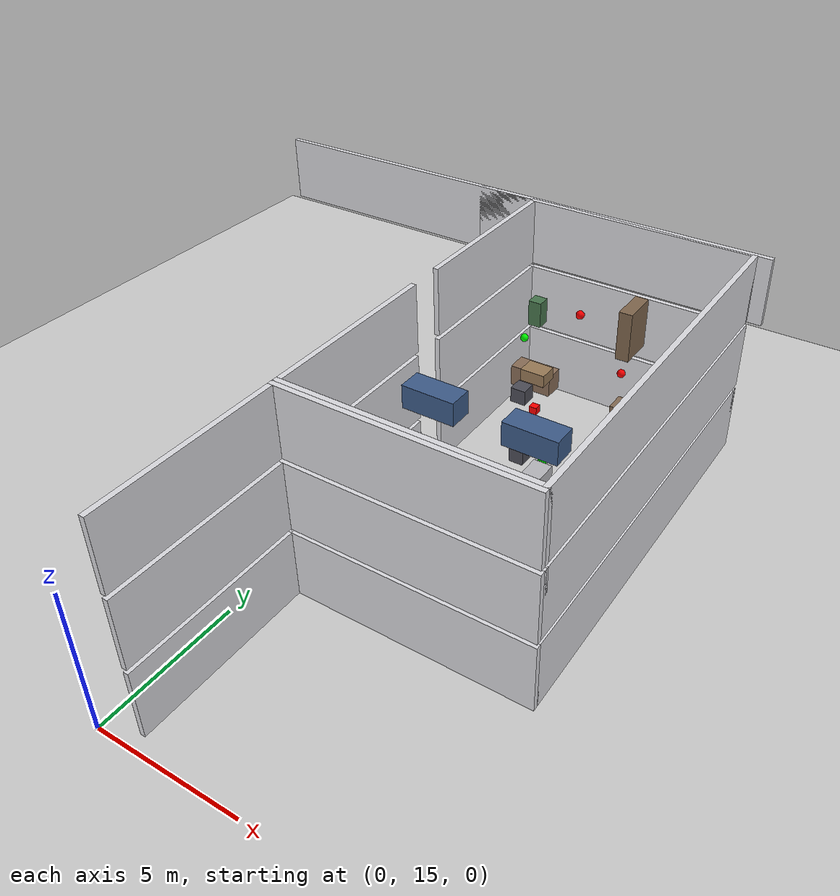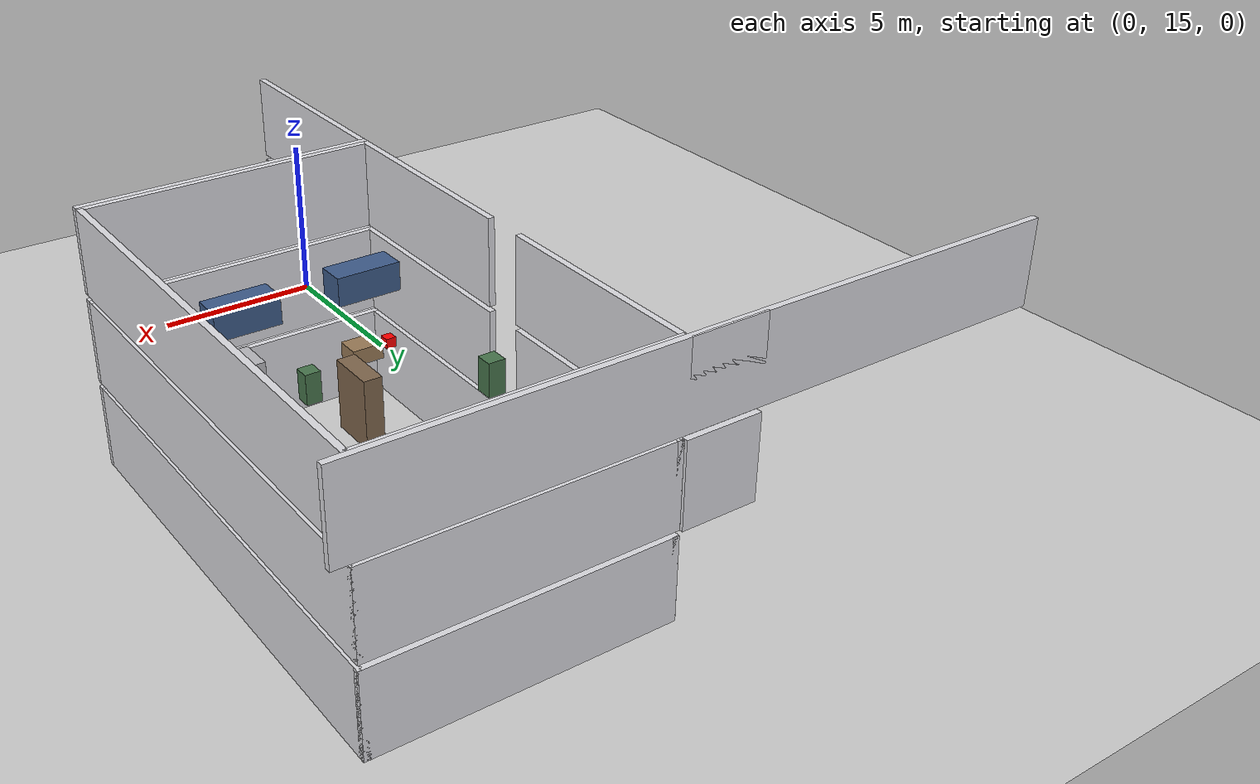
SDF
<sdf version="1.7">
 <world name="generated_world">
  <include><uri>model://sun</uri></include>
  <include><uri>model://ground_plane</uri></include>
  <model name="generated_building">
   <static>true</static>
   <link name="floor_0_room_1_corridor_wall_upper">
    <pose>1.1900 18.6725 1.2250 0.0000 0.0000 0.0000</pose>
    <collision name="floor_0_room_1_corridor_wall_upper_collision">
     <geometry><box><size>0.1800 6.4150 2.4500</size></box></geometry>
    </collision>
    <visual name="floor_0_room_1_corridor_wall_upper_visual">
     <geometry><box><size>0.1800 6.4150 2.4500</size></box></geometry>
     <material><ambient>0.86 0.86 0.88 1</ambient><diffuse>0.86 0.86 0.88 1</diffuse></material>
    </visual>
    <gravity>false</gravity>
   </link>
   <link name="floor_0_room_1_north_wall">
    <pose>5.3000 21.7900 1.2250 0.0000 0.0000 0.0000</pose>
    <collision name="floor_0_room_1_north_wall_collision">
     <geometry><box><size>8.4000 0.1800 2.4500</size></box></geometry>
    </collision>
    <visual name="floor_0_room_1_north_wall_visual">
     <geometry><box><size>8.4000 0.1800 2.4500</size></box></geometry>
     <material><ambient>0.86 0.86 0.88 1</ambient><diffuse>0.86 0.86 0.88 1</diffuse></material>
    </visual>
    <gravity>false</gravity>
   </link>
   <link name="floor_0_room_3_corridor_wall_lower">
    <pose>1.1900 25.0875 1.2250 0.0000 0.0000 0.0000</pose>
    <collision name="floor_0_room_3_corridor_wall_lower_collision">
     <geometry><box><size>0.1800 6.4150 2.4500</size></box></geometry>
    </collision>
    <visual name="floor_0_room_3_corridor_wall_lower_visual">
     <geometry><box><size>0.1800 6.4150 2.4500</size></box></geometry>
     <material><ambient>0.86 0.86 0.88 1</ambient><diffuse>0.86 0.86 0.88 1</diffuse></material>
    </visual>
    <gravity>false</gravity>
   </link>
   <link name="floor_0_room_3_corridor_wall_upper">
    <pose>1.1900 32.7025 1.2250 0.0000 0.0000 0.0000</pose>
    <collision name="floor_0_room_3_corridor_wall_upper_collision">
     <geometry><box><size>0.1800 6.4150 2.4500</size></box></geometry>
    </collision>
    <visual name="floor_0_room_3_corridor_wall_upper_visual">
     <geometry><box><size>0.1800 6.4150 2.4500</size></box></geometry>
     <material><ambient>0.86 0.86 0.88 1</ambient><diffuse>0.86 0.86 0.88 1</diffuse></material>
    </visual>
    <gravity>false</gravity>
   </link>
   <link name="floor_0_room_3_east_wall">
    <pose>9.4100 28.8950 1.2250 0.0000 0.0000 0.0000</pose>
    <collision name="floor_0_room_3_east_wall_collision">
     <geometry><box><size>0.1800 14.0300 2.4500</size></box></geometry>
    </collision>
    <visual name="floor_0_room_3_east_wall_visual">
     <geometry><box><size>0.1800 14.0300 2.4500</size></box></geometry>
     <material><ambient>0.86 0.86 0.88 1</ambient><diffuse>0.86 0.86 0.88 1</diffuse></material>
    </visual>
    <gravity>false</gravity>
   </link>
   <link name="floor_0_room_3_south_wall">
    <pose>5.3000 21.9700 1.2250 0.0000 0.0000 0.0000</pose>
    <collision name="floor_0_room_3_south_wall_collision">
     <geometry><box><size>8.4000 0.1800 2.4500</size></box></geometry>
    </collision>
    <visual name="floor_0_room_3_south_wall_visual">
     <geometry><box><size>8.4000 0.1800 2.4500</size></box></geometry>
     <material><ambient>0.86 0.86 0.88 1</ambient><diffuse>0.86 0.86 0.88 1</diffuse></material>
    </visual>
    <gravity>false</gravity>
   </link>
   <link name="floor_0_room_3_north_wall">
    <pose>5.3000 35.8200 1.2250 0.0000 0.0000 0.0000</pose>
    <collision name="floor_0_room_3_north_wall_collision">
     <geometry><box><size>8.4000 0.1800 2.4500</size></box></geometry>
    </collision>
    <visual name="floor_0_room_3_north_wall_visual">
     <geometry><box><size>8.4000 0.1800 2.4500</size></box></geometry>
     <material><ambient>0.86 0.86 0.88 1</ambient><diffuse>0.86 0.86 0.88 1</diffuse></material>
    </visual>
    <gravity>false</gravity>
   </link>
   <link name="floor_0_room_3_desk">
    <pose>3.6000 31.9525 0.4500 0.0000 0.0000 0.0000</pose>
    <collision name="floor_0_room_3_desk_collision">
     <geometry><box><size>1.5000 0.7000 0.7500</size></box></geometry>
    </collision>
    <visual name="floor_0_room_3_desk_visual">
     <geometry><box><size>1.5000 0.7000 0.7500</size></box></geometry>
     <material><ambient>0.54 0.43 0.34 1</ambient><diffuse>0.54 0.43 0.34 1</diffuse></material>
    </visual>
    <gravity>false</gravity>
   </link>
   <link name="floor_0_room_3_chair">
    <pose>3.6000 31.0525 0.2800 0.0000 0.0000 0.0000</pose>
    <collision name="floor_0_room_3_chair_collision">
     <geometry><box><size>0.5500 0.5500 0.5500</size></box></geometry>
    </collision>
    <visual name="floor_0_room_3_chair_visual">
     <geometry><box><size>0.5500 0.5500 0.5500</size></box></geometry>
     <material><ambient>0.30 0.30 0.34 1</ambient><diffuse>0.30 0.30 0.34 1</diffuse></material>
    </visual>
    <gravity>false</gravity>
   </link>
   <link name="floor_0_room_3_cabinet">
    <pose>7.0000 25.8375 0.9000 0.0000 0.0000 0.0000</pose>
    <collision name="floor_0_room_3_cabinet_collision">
     <geometry><box><size>0.6000 1.0000 1.8000</size></box></geometry>
    </collision>
    <visual name="floor_0_room_3_cabinet_visual">
     <geometry><box><size>0.6000 1.0000 1.8000</size></box></geometry>
     <material><ambient>0.72 0.72 0.74 1</ambient><diffuse>0.72 0.72 0.74 1</diffuse></material>
    </visual>
    <gravity>false</gravity>
   </link>
   <link name="floor_0_room_3_side_table">
    <pose>7.0000 31.9525 0.3200 0.0000 0.0000 0.0000</pose>
    <collision name="floor_0_room_3_side_table_collision">
     <geometry><box><size>0.7000 0.7000 0.4500</size></box></geometry>
    </collision>
    <visual name="floor_0_room_3_side_table_visual">
     <geometry><box><size>0.7000 0.7000 0.4500</size></box></geometry>
     <material><ambient>0.52 0.42 0.33 1</ambient><diffuse>0.52 0.42 0.33 1</diffuse></material>
    </visual>
    <gravity>false</gravity>
   </link>
   <link name="floor_0_room_3_planter">
    <pose>5.3000 25.8375 0.4500 0.0000 0.0000 0.0000</pose>
    <collision name="floor_0_room_3_planter_collision">
     <geometry><box><size>0.4500 0.4500 0.9000</size></box></geometry>
    </collision>
    <visual name="floor_0_room_3_planter_visual">
     <geometry><box><size>0.4500 0.4500 0.9000</size></box></geometry>
     <material><ambient>0.28 0.46 0.30 1</ambient><diffuse>0.28 0.46 0.30 1</diffuse></material>
    </visual>
    <gravity>false</gravity>
   </link>
   <link name="north_end_wall_floor_1">
    <pose>0.0000 35.9100 3.8250 0.0000 0.0000 0.0000</pose>
    <collision name="north_end_wall_floor_1_collision">
     <geometry><box><size>2.2000 0.1800 2.4500</size></box></geometry>
    </collision>
    <visual name="north_end_wall_floor_1_visual">
     <geometry><box><size>2.2000 0.1800 2.4500</size></box></geometry>
     <material><ambient>0.86 0.86 0.88 1</ambient><diffuse>0.86 0.86 0.88 1</diffuse></material>
    </visual>
    <gravity>false</gravity>
   </link>
   <link name="floor_1_room_1_corridor_wall_upper">
    <pose>1.1900 18.6725 3.8250 0.0000 0.0000 0.0000</pose>
    <collision name="floor_1_room_1_corridor_wall_upper_collision">
     <geometry><box><size>0.1800 6.4150 2.4500</size></box></geometry>
    </collision>
    <visual name="floor_1_room_1_corridor_wall_upper_visual">
     <geometry><box><size>0.1800 6.4150 2.4500</size></box></geometry>
     <material><ambient>0.86 0.86 0.88 1</ambient><diffuse>0.86 0.86 0.88 1</diffuse></material>
    </visual>
    <gravity>false</gravity>
   </link>
   <link name="floor_1_room_1_north_wall">
    <pose>5.3000 21.7900 3.8250 0.0000 0.0000 0.0000</pose>
    <collision name="floor_1_room_1_north_wall_collision">
     <geometry><box><size>8.4000 0.1800 2.4500</size></box></geometry>
    </collision>
    <visual name="floor_1_room_1_north_wall_visual">
     <geometry><box><size>8.4000 0.1800 2.4500</size></box></geometry>
     <material><ambient>0.86 0.86 0.88 1</ambient><diffuse>0.86 0.86 0.88 1</diffuse></material>
    </visual>
    <gravity>false</gravity>
   </link>
   <link name="floor_1_room_3_corridor_wall_lower">
    <pose>1.1900 25.0875 3.8250 0.0000 0.0000 0.0000</pose>
    <collision name="floor_1_room_3_corridor_wall_lower_collision">
     <geometry><box><size>0.1800 6.4150 2.4500</size></box></geometry>
    </collision>
    <visual name="floor_1_room_3_corridor_wall_lower_visual">
     <geometry><box><size>0.1800 6.4150 2.4500</size></box></geometry>
     <material><ambient>0.86 0.86 0.88 1</ambient><diffuse>0.86 0.86 0.88 1</diffuse></material>
    </visual>
    <gravity>false</gravity>
   </link>
   <link name="floor_1_room_3_corridor_wall_upper">
    <pose>1.1900 32.7025 3.8250 0.0000 0.0000 0.0000</pose>
    <collision name="floor_1_room_3_corridor_wall_upper_collision">
     <geometry><box><size>0.1800 6.4150 2.4500</size></box></geometry>
    </collision>
    <visual name="floor_1_room_3_corridor_wall_upper_visual">
     <geometry><box><size>0.1800 6.4150 2.4500</size></box></geometry>
     <material><ambient>0.86 0.86 0.88 1</ambient><diffuse>0.86 0.86 0.88 1</diffuse></material>
    </visual>
    <gravity>false</gravity>
   </link>
   <link name="floor_1_room_3_east_wall">
    <pose>9.4100 28.8950 3.8250 0.0000 0.0000 0.0000</pose>
    <collision name="floor_1_room_3_east_wall_collision">
     <geometry><box><size>0.1800 14.0300 2.4500</size></box></geometry>
    </collision>
    <visual name="floor_1_room_3_east_wall_visual">
     <geometry><box><size>0.1800 14.0300 2.4500</size></box></geometry>
     <material><ambient>0.86 0.86 0.88 1</ambient><diffuse>0.86 0.86 0.88 1</diffuse></material>
    </visual>
    <gravity>false</gravity>
   </link>
   <link name="floor_1_room_3_south_wall">
    <pose>5.3000 21.9700 3.8250 0.0000 0.0000 0.0000</pose>
    <collision name="floor_1_room_3_south_wall_collision">
     <geometry><box><size>8.4000 0.1800 2.4500</size></box></geometry>
    </collision>
    <visual name="floor_1_room_3_south_wall_visual">
     <geometry><box><size>8.4000 0.1800 2.4500</size></box></geometry>
     <material><ambient>0.86 0.86 0.88 1</ambient><diffuse>0.86 0.86 0.88 1</diffuse></material>
    </visual>
    <gravity>false</gravity>
   </link>
   <link name="floor_1_room_3_north_wall">
    <pose>5.3000 35.8200 3.8250 0.0000 0.0000 0.0000</pose>
    <collision name="floor_1_room_3_north_wall_collision">
     <geometry><box><size>8.4000 0.1800 2.4500</size></box></geometry>
    </collision>
    <visual name="floor_1_room_3_north_wall_visual">
     <geometry><box><size>8.4000 0.1800 2.4500</size></box></geometry>
     <material><ambient>0.86 0.86 0.88 1</ambient><diffuse>0.86 0.86 0.88 1</diffuse></material>
    </visual>
    <gravity>false</gravity>
   </link>
   <link name="floor_1_room_3_desk">
    <pose>3.6000 31.9525 3.0500 0.0000 0.0000 0.0000</pose>
    <collision name="floor_1_room_3_desk_collision">
     <geometry><box><size>1.5000 0.7000 0.7500</size></box></geometry>
    </collision>
    <visual name="floor_1_room_3_desk_visual">
     <geometry><box><size>1.5000 0.7000 0.7500</size></box></geometry>
     <material><ambient>0.54 0.43 0.34 1</ambient><diffuse>0.54 0.43 0.34 1</diffuse></material>
    </visual>
    <gravity>false</gravity>
   </link>
   <link name="floor_1_room_3_chair">
    <pose>3.6000 31.0525 2.8800 0.0000 0.0000 0.0000</pose>
    <collision name="floor_1_room_3_chair_collision">
     <geometry><box><size>0.5500 0.5500 0.5500</size></box></geometry>
    </collision>
    <visual name="floor_1_room_3_chair_visual">
     <geometry><box><size>0.5500 0.5500 0.5500</size></box></geometry>
     <material><ambient>0.30 0.30 0.34 1</ambient><diffuse>0.30 0.30 0.34 1</diffuse></material>
    </visual>
    <gravity>false</gravity>
   </link>
   <link name="floor_1_room_3_cabinet">
    <pose>7.0000 25.8375 3.5000 0.0000 0.0000 0.0000</pose>
    <collision name="floor_1_room_3_cabinet_collision">
     <geometry><box><size>0.6000 1.0000 1.8000</size></box></geometry>
    </collision>
    <visual name="floor_1_room_3_cabinet_visual">
     <geometry><box><size>0.6000 1.0000 1.8000</size></box></geometry>
     <material><ambient>0.72 0.72 0.74 1</ambient><diffuse>0.72 0.72 0.74 1</diffuse></material>
    </visual>
    <gravity>false</gravity>
   </link>
   <link name="floor_1_room_3_side_table">
    <pose>7.0000 31.9525 2.9200 0.0000 0.0000 0.0000</pose>
    <collision name="floor_1_room_3_side_table_collision">
     <geometry><box><size>0.7000 0.7000 0.4500</size></box></geometry>
    </collision>
    <visual name="floor_1_room_3_side_table_visual">
     <geometry><box><size>0.7000 0.7000 0.4500</size></box></geometry>
     <material><ambient>0.52 0.42 0.33 1</ambient><diffuse>0.52 0.42 0.33 1</diffuse></material>
    </visual>
    <gravity>false</gravity>
   </link>
   <link name="floor_1_room_3_planter">
    <pose>5.3000 25.8375 3.0500 0.0000 0.0000 0.0000</pose>
    <collision name="floor_1_room_3_planter_collision">
     <geometry><box><size>0.4500 0.4500 0.9000</size></box></geometry>
    </collision>
    <visual name="floor_1_room_3_planter_visual">
     <geometry><box><size>0.4500 0.4500 0.9000</size></box></geometry>
     <material><ambient>0.28 0.46 0.30 1</ambient><diffuse>0.28 0.46 0.30 1</diffuse></material>
    </visual>
    <gravity>false</gravity>
   </link>
   <link name="exterior_north_floor_2">
    <pose>0.0000 35.9100 6.4250 0.0000 0.0000 0.0000</pose>
    <collision name="exterior_north_floor_2_collision">
     <geometry><box><size>20.0000 0.1800 2.4500</size></box></geometry>
    </collision>
    <visual name="exterior_north_floor_2_visual">
     <geometry><box><size>20.0000 0.1800 2.4500</size></box></geometry>
     <material><ambient>0.86 0.86 0.88 1</ambient><diffuse>0.86 0.86 0.88 1</diffuse></material>
    </visual>
    <gravity>false</gravity>
   </link>
   <link name="north_end_wall_floor_2">
    <pose>0.0000 35.9100 6.4250 0.0000 0.0000 0.0000</pose>
    <collision name="north_end_wall_floor_2_collision">
     <geometry><box><size>2.2000 0.1800 2.4500</size></box></geometry>
    </collision>
    <visual name="north_end_wall_floor_2_visual">
     <geometry><box><size>2.2000 0.1800 2.4500</size></box></geometry>
     <material><ambient>0.86 0.86 0.88 1</ambient><diffuse>0.86 0.86 0.88 1</diffuse></material>
    </visual>
    <gravity>false</gravity>
   </link>
   <link name="floor_2_room_1_corridor_wall_upper">
    <pose>1.1900 18.6725 6.4250 0.0000 0.0000 0.0000</pose>
    <collision name="floor_2_room_1_corridor_wall_upper_collision">
     <geometry><box><size>0.1800 6.4150 2.4500</size></box></geometry>
    </collision>
    <visual name="floor_2_room_1_corridor_wall_upper_visual">
     <geometry><box><size>0.1800 6.4150 2.4500</size></box></geometry>
     <material><ambient>0.86 0.86 0.88 1</ambient><diffuse>0.86 0.86 0.88 1</diffuse></material>
    </visual>
    <gravity>false</gravity>
   </link>
   <link name="floor_2_room_1_north_wall">
    <pose>5.3000 21.7900 6.4250 0.0000 0.0000 0.0000</pose>
    <collision name="floor_2_room_1_north_wall_collision">
     <geometry><box><size>8.4000 0.1800 2.4500</size></box></geometry>
    </collision>
    <visual name="floor_2_room_1_north_wall_visual">
     <geometry><box><size>8.4000 0.1800 2.4500</size></box></geometry>
     <material><ambient>0.86 0.86 0.88 1</ambient><diffuse>0.86 0.86 0.88 1</diffuse></material>
    </visual>
    <gravity>false</gravity>
   </link>
   <link name="floor_2_room_3_corridor_wall_lower">
    <pose>1.1900 25.0875 6.4250 0.0000 0.0000 0.0000</pose>
    <collision name="floor_2_room_3_corridor_wall_lower_collision">
     <geometry><box><size>0.1800 6.4150 2.4500</size></box></geometry>
    </collision>
    <visual name="floor_2_room_3_corridor_wall_lower_visual">
     <geometry><box><size>0.1800 6.4150 2.4500</size></box></geometry>
     <material><ambient>0.86 0.86 0.88 1</ambient><diffuse>0.86 0.86 0.88 1</diffuse></material>
    </visual>
    <gravity>false</gravity>
   </link>
   <link name="floor_2_room_3_corridor_wall_upper">
    <pose>1.1900 32.7025 6.4250 0.0000 0.0000 0.0000</pose>
    <collision name="floor_2_room_3_corridor_wall_upper_collision">
     <geometry><box><size>0.1800 6.4150 2.4500</size></box></geometry>
    </collision>
    <visual name="floor_2_room_3_corridor_wall_upper_visual">
     <geometry><box><size>0.1800 6.4150 2.4500</size></box></geometry>
     <material><ambient>0.86 0.86 0.88 1</ambient><diffuse>0.86 0.86 0.88 1</diffuse></material>
    </visual>
    <gravity>false</gravity>
   </link>
   <link name="floor_2_room_3_east_wall">
    <pose>9.4100 28.8950 6.4250 0.0000 0.0000 0.0000</pose>
    <collision name="floor_2_room_3_east_wall_collision">
     <geometry><box><size>0.1800 14.0300 2.4500</size></box></geometry>
    </collision>
    <visual name="floor_2_room_3_east_wall_visual">
     <geometry><box><size>0.1800 14.0300 2.4500</size></box></geometry>
     <material><ambient>0.86 0.86 0.88 1</ambient><diffuse>0.86 0.86 0.88 1</diffuse></material>
    </visual>
    <gravity>false</gravity>
   </link>
   <link name="floor_2_room_3_south_wall">
    <pose>5.3000 21.9700 6.4250 0.0000 0.0000 0.0000</pose>
    <collision name="floor_2_room_3_south_wall_collision">
     <geometry><box><size>8.4000 0.1800 2.4500</size></box></geometry>
    </collision>
    <visual name="floor_2_room_3_south_wall_visual">
     <geometry><box><size>8.4000 0.1800 2.4500</size></box></geometry>
     <material><ambient>0.86 0.86 0.88 1</ambient><diffuse>0.86 0.86 0.88 1</diffuse></material>
    </visual>
    <gravity>false</gravity>
   </link>
   <link name="floor_2_room_3_north_wall">
    <pose>5.3000 35.8200 6.4250 0.0000 0.0000 0.0000</pose>
    <collision name="floor_2_room_3_north_wall_collision">
     <geometry><box><size>8.4000 0.1800 2.4500</size></box></geometry>
    </collision>
    <visual name="floor_2_room_3_north_wall_visual">
     <geometry><box><size>8.4000 0.1800 2.4500</size></box></geometry>
     <material><ambient>0.86 0.86 0.88 1</ambient><diffuse>0.86 0.86 0.88 1</diffuse></material>
    </visual>
    <gravity>false</gravity>
   </link>
   <link name="floor_2_room_3_sofa_a">
    <pose>3.6000 25.8375 5.6500 0.0000 0.0000 0.0000</pose>
    <collision name="floor_2_room_3_sofa_a_collision">
     <geometry><box><size>1.8000 0.8000 0.8000</size></box></geometry>
    </collision>
    <visual name="floor_2_room_3_sofa_a_visual">
     <geometry><box><size>1.8000 0.8000 0.8000</size></box></geometry>
     <material><ambient>0.24 0.36 0.54 1</ambient><diffuse>0.24 0.36 0.54 1</diffuse></material>
    </visual>
    <gravity>false</gravity>
   </link>
   <link name="floor_2_room_3_sofa_b">
    <pose>7.0000 25.8375 5.6500 0.0000 0.0000 3.1400</pose>
    <collision name="floor_2_room_3_sofa_b_collision">
     <geometry><box><size>1.8000 0.8000 0.8000</size></box></geometry>
    </collision>
    <visual name="floor_2_room_3_sofa_b_visual">
     <geometry><box><size>1.8000 0.8000 0.8000</size></box></geometry>
     <material><ambient>0.24 0.36 0.54 1</ambient><diffuse>0.24 0.36 0.54 1</diffuse></material>
    </visual>
    <gravity>false</gravity>
   </link>
   <link name="floor_2_room_3_coffee_table">
    <pose>5.3000 28.8950 5.4500 0.0000 0.0000 0.0000</pose>
    <collision name="floor_2_room_3_coffee_table_collision">
     <geometry><box><size>0.8000 0.6000 0.4000</size></box></geometry>
    </collision>
    <visual name="floor_2_room_3_coffee_table_visual">
     <geometry><box><size>0.8000 0.6000 0.4000</size></box></geometry>
     <material><ambient>0.60 0.48 0.34 1</ambient><diffuse>0.60 0.48 0.34 1</diffuse></material>
    </visual>
    <gravity>false</gravity>
   </link>
   <link name="floor_2_room_3_bookshelf">
    <pose>7.0000 31.9525 6.0500 0.0000 0.0000 0.0000</pose>
    <collision name="floor_2_room_3_bookshelf_collision">
     <geometry><box><size>0.4500 1.2000 1.7000</size></box></geometry>
    </collision>
    <visual name="floor_2_room_3_bookshelf_visual">
     <geometry><box><size>0.4500 1.2000 1.7000</size></box></geometry>
     <material><ambient>0.50 0.40 0.30 1</ambient><diffuse>0.50 0.40 0.30 1</diffuse></material>
    </visual>
    <gravity>false</gravity>
   </link>
   <link name="floor_2_room_3_planter">
    <pose>3.6000 31.9525 5.6500 0.0000 0.0000 0.0000</pose>
    <collision name="floor_2_room_3_planter_collision">
     <geometry><box><size>0.4500 0.4500 0.9000</size></box></geometry>
    </collision>
    <visual name="floor_2_room_3_planter_visual">
     <geometry><box><size>0.4500 0.4500 0.9000</size></box></geometry>
     <material><ambient>0.28 0.46 0.30 1</ambient><diffuse>0.28 0.46 0.30 1</diffuse></material>
    </visual>
    <gravity>false</gravity>
   </link>
  </model>
  <model name="distractor_green_sphere_02">
   <static>true</static>
   <pose>1.754295 34.446546 2.750000 0.000000 0.000000 0.000000</pose>
   <link name="link">
    <collision name="collision"><geometry><sphere><radius>0.150</radius></sphere></geometry></collision>
    <visual name="visual">
     <geometry><sphere><radius>0.150</radius></sphere></geometry>
     <material><ambient>0.0 1.0 0.0 1.0</ambient><diffuse>0.0 1.0 0.0 1.0</diffuse></material>
    </visual>
   </link>
  </model>
  <model name="distractor_red_box_04">
   <static>true</static>
   <pose>2.120885 24.398221 2.750000 0.000000 0.000000 0.000000</pose>
   <link name="link">
    <collision name="collision">
     <geometry><box><size>0.300000 0.300000 0.300000</size></box></geometry>
    </collision>
    <visual name="visual">
     <geometry><box><size>0.300000 0.300000 0.300000</size></box></geometry>
     <material><ambient>1.0 0.0 0.0 1.0</ambient><diffuse>1.0 0.0 0.0 1.0</diffuse></material>
    </visual>
   </link>
  </model>
  <model name="distractor_green_sphere_05">
   <static>true</static>
   <pose>5.964353 28.284583 2.750000 0.000000 0.000000 0.000000</pose>
   <link name="link">
    <collision name="collision"><geometry><sphere><radius>0.150</radius></sphere></geometry></collision>
    <visual name="visual">
     <geometry><sphere><radius>0.150</radius></sphere></geometry>
     <material><ambient>0.0 1.0 0.0 1.0</ambient><diffuse>0.0 1.0 0.0 1.0</diffuse></material>
    </visual>
   </link>
  </model>
  <model name="distractor_red_box_06">
   <static>true</static>
   <pose>2.612128 33.884053 0.150000 0.000000 0.000000 0.000000</pose>
   <link name="link">
    <collision name="collision">
     <geometry><box><size>0.300000 0.300000 0.300000</size></box></geometry>
    </collision>
    <visual name="visual">
     <geometry><box><size>0.300000 0.300000 0.300000</size></box></geometry>
     <material><ambient>1.0 0.0 0.0 1.0</ambient><diffuse>1.0 0.0 0.0 1.0</diffuse></material>
    </visual>
   </link>
  </model>
  <model name="danger_red_sphere_02">
   <static>true</static>
   <pose>5.874846 34.167882 2.750000 0.000000 0.000000 0.000000</pose>
   <link name="link">
    <collision name="collision"><geometry><sphere><radius>0.150</radius></sphere></geometry></collision>
    <visual name="visual">
     <geometry><sphere><radius>0.150</radius></sphere></geometry>
     <material><ambient>1.0 0.0 0.0 1.0</ambient><diffuse>1.0 0.0 0.0 1.0</diffuse></material>
    </visual>
   </link>
  </model>
  <model name="distractor_green_sphere_07">
   <static>true</static>
   <pose>7.008638 23.982192 2.750000 0.000000 0.000000 0.000000</pose>
   <link name="link">
    <collision name="collision"><geometry><sphere><radius>0.150</radius></sphere></geometry></collision>
    <visual name="visual">
     <geometry><sphere><radius>0.150</radius></sphere></geometry>
     <material><ambient>0.0 1.0 0.0 1.0</ambient><diffuse>0.0 1.0 0.0 1.0</diffuse></material>
    </visual>
   </link>
  </model>
  <model name="danger_red_sphere_04">
   <static>true</static>
   <pose>4.680260 32.980413 5.350000 0.000000 0.000000 0.000000</pose>
   <link name="link">
    <collision name="collision"><geometry><sphere><radius>0.150</radius></sphere></geometry></collision>
    <visual name="visual">
     <geometry><sphere><radius>0.150</radius></sphere></geometry>
     <material><ambient>1.0 0.0 0.0 1.0</ambient><diffuse>1.0 0.0 0.0 1.0</diffuse></material>
    </visual>
   </link>
  </model>
 </world>
</sdf>
